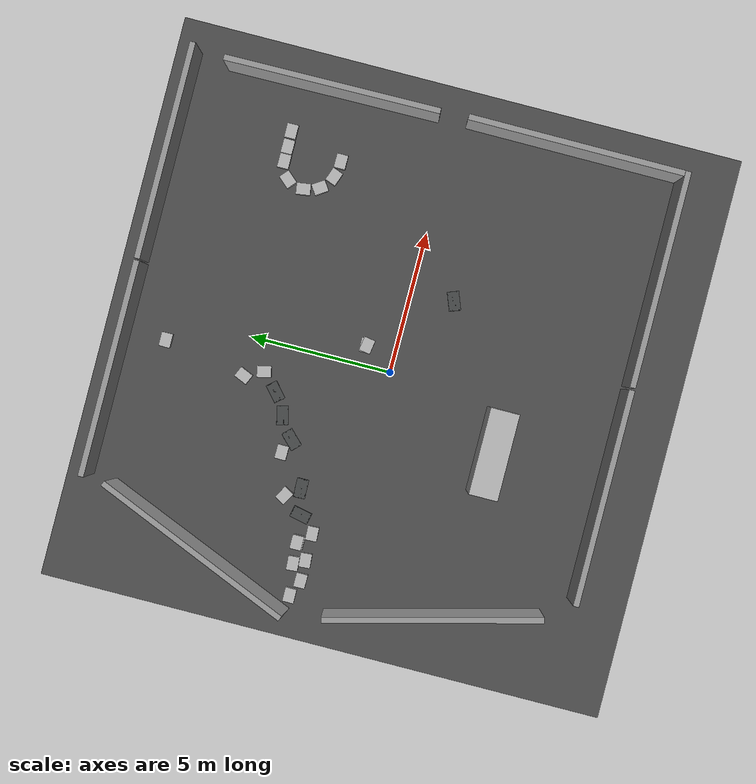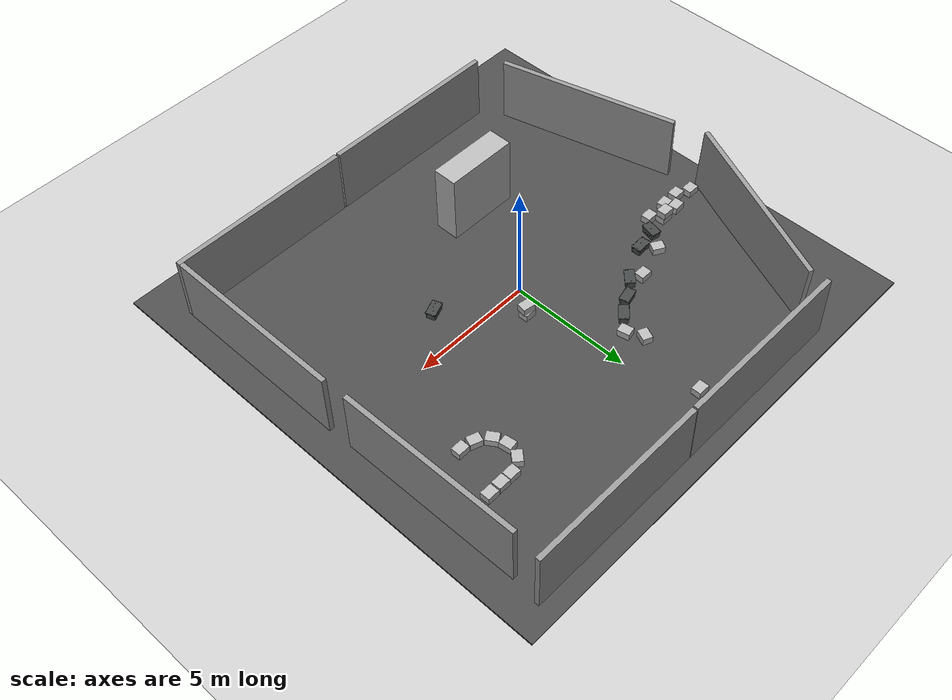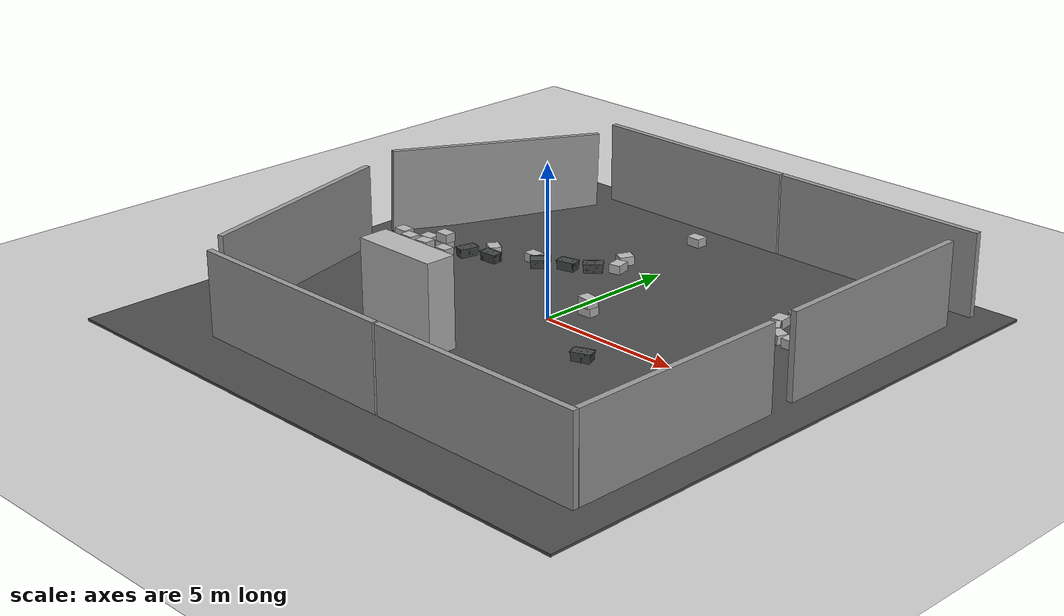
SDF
<sdf version="1.6">
 <world name="default">
  <light name="sun" type="directional">
   <pose>0 0 10 0 -0 0</pose>
   <diffuse>0.8 0.8 0.8 1</diffuse>
   <specular>0.2 0.2 0.2 1</specular>
   <attenuation>
    <range>1000</range>
    <constant>0.9</constant>
    <linear>0.01</linear>
    <quadratic>0.001</quadratic>
   </attenuation>
   <direction>-0.5 0.1 -0.9</direction>
  </light>
  <model name="ground_plane">
   <static>1</static>
   <link name="link">
    <collision name="collision">
     <geometry><plane><normal>0 0 1</normal><size>100 100</size></plane></geometry>
     <surface><friction><ode><mu>100</mu><mu2>50</mu2></ode></friction></surface>
    </collision>
    <visual name="visual">
     <cast_shadows>0</cast_shadows>
     <geometry><plane><normal>0 0 1</normal><size>100 100</size></plane></geometry>
     <material>
      <script><uri>file://media/materials/scripts/gazebo.material</uri><name>Gazebo/Grey</name></script>
     </material>
    </visual>
   </link>
  </model>
  <gravity>0 0 -9.8</gravity>
  <magnetic_field>6e-06 2.3e-05 -4.2e-05</magnetic_field>
  <atmosphere type="adiabatic"/>
  <physics name="default_physics" default="0" type="ode">
   <max_step_size>0.001</max_step_size>
   <real_time_factor>1</real_time_factor>
   <real_time_update_rate>1000</real_time_update_rate>
  </physics>
  <scene><ambient>0.4 0.4 0.4 1</ambient><background>0.7 0.7 0.7 1</background><shadows>1</shadows></scene>
  <audio><device>default</device></audio>
  <spherical_coordinates>
   <surface_model>EARTH_WGS84</surface_model>
   <latitude_deg>0</latitude_deg>
   <longitude_deg>0</longitude_deg>
   <elevation>0</elevation>
   <heading_deg>0</heading_deg>
  </spherical_coordinates>
  <model name="asphalt_plane">
   <static>1</static>
   <link name="link">
    <collision name="collision"><geometry><box><size>20 20 0.1</size></box></geometry></collision>
    <visual name="visual">
     <cast_shadows>0</cast_shadows>
     <geometry><box><size>20 20 0.1</size></box></geometry>
     <material>
      <script>
       <uri>model://asphalt_plane/materials/scripts</uri>
       <uri>model://asphalt_plane/materials/textures</uri>
       <name>vrc/asphalt</name>
      </script>
     </material>
    </visual>
   </link>
   <pose>0.192279 0.013144 0 0 -0 0</pose>
  </model>
  <model name="cardboard_box">
   <pose>0.72476 1.01066 0.497998 0 0 -0.15669</pose>
   <link name="link">
    <inertial>
     <mass>2</mass>
     <inertia>
      <ixx>0.0416667</ixx>
      <ixy>0</ixy>
      <ixz>0</ixz>
      <iyy>0.0566667</iyy>
      <iyz>0</iyz>
      <izz>0.0683333</izz>
     </inertia>
    </inertial>
    <collision name="collision">
     <geometry><box><size>0.5 0.4 0.3</size></box></geometry>
     <surface>
      <friction><ode><mu>1</mu><mu2>1</mu2></ode></friction>
      <contact><ode><kp>1e+07</kp><kd>1</kd><min_depth>0.001</min_depth><max_vel>0.1</max_vel></ode></contact>
     </surface>
    </collision>
    <visual name="visual">
     <pose>0 0 -0.15 0 -0 0</pose>
     <geometry>
      <mesh><uri>model://cardboard_box/meshes/cardboard_box.dae</uri><scale>1.25932 1.00745 0.755591</scale></mesh>
     </geometry>
    </visual>
   </link>
  </model>
  <model name="cardboard_box_0">
   <pose>0.71189 1.05322 0.198999 0 0 -2.5e-05</pose>
   <link name="link">
    <inertial>
     <mass>2</mass>
     <inertia>
      <ixx>0.0416667</ixx>
      <ixy>0</ixy>
      <ixz>0</ixz>
      <iyy>0.0566667</iyy>
      <iyz>0</iyz>
      <izz>0.0683333</izz>
     </inertia>
    </inertial>
    <collision name="collision">
     <geometry><box><size>0.5 0.4 0.3</size></box></geometry>
     <surface>
      <friction><ode><mu>1</mu><mu2>1</mu2></ode></friction>
      <contact><ode><kp>1e+07</kp><kd>1</kd><min_depth>0.001</min_depth><max_vel>0.1</max_vel></ode></contact>
     </surface>
    </collision>
    <visual name="visual">
     <pose>0 0 -0.15 0 -0 0</pose>
     <geometry>
      <mesh><uri>model://cardboard_box/meshes/cardboard_box.dae</uri><scale>1.25932 1.00745 0.755591</scale></mesh>
     </geometry>
    </visual>
   </link>
  </model>
  <model name="grey_wall">
   <static>1</static>
   <link name="link">
    <pose>0 0 1.4 0 -0 0</pose>
    <collision name="collision"><geometry><box><size>7.5 0.2 2.8</size></box></geometry></collision>
    <visual name="visual">
     <cast_shadows>0</cast_shadows>
     <geometry><box><size>7.5 0.2 2.8</size></box></geometry>
     <material>
      <script>
       <uri>model://grey_wall/materials/scripts</uri>
       <uri>model://grey_wall/materials/textures</uri>
       <name>vrc/grey_wall</name>
      </script>
     </material>
    </visual>
   </link>
   <pose>-7.44954 4.84736 -0.015063 -0.017176 0.041384 1.17726</pose>
  </model>
  <model name="brick_box_3x1x3">
   <static>1</static>
   <link name="chassis">
    <pose>0 0 1.5 0 -0 0</pose>
    <collision name="collision"><geometry><box><size>3 1 3</size></box></geometry></collision>
    <visual name="visual">
     <geometry><mesh><uri>model://brick_box_3x1x3/meshes/simple_box.dae</uri><scale>3 1 3</scale></mesh></geometry>
     <material>
      <script>
       <uri>model://brick_box_3x1x3/materials/scripts</uri>
       <uri>model://brick_box_3x1x3/materials/textures</uri>
       <name>BrickBox/Diffuse</name>
      </script>
     </material>
    </visual>
   </link>
   <pose>-1.76434 -4.05276 0 0 -0 0</pose>
  </model>
  <model name="grey_wall_0">
   <static>1</static>
   <link name="link">
    <pose>0 0 1.4 0 -0 0</pose>
    <collision name="collision"><geometry><box><size>7.5 0.2 2.8</size></box></geometry></collision>
    <visual name="visual">
     <cast_shadows>0</cast_shadows>
     <geometry><box><size>7.5 0.2 2.8</size></box></geometry>
     <material>
      <script>
       <uri>model://grey_wall/materials/scripts</uri>
       <uri>model://grey_wall/materials/textures</uri>
       <name>vrc/grey_wall</name>
      </script>
     </material>
    </visual>
   </link>
   <pose>-2.27113 -7.9947 0 0 -0 0</pose>
  </model>
  <model name="grey_wall_1">
   <static>1</static>
   <link name="link">
    <pose>0 0 1.4 0 -0 0</pose>
    <collision name="collision"><geometry><box><size>7.5 0.2 2.8</size></box></geometry></collision>
    <visual name="visual">
     <cast_shadows>0</cast_shadows>
     <geometry><box><size>7.5 0.2 2.8</size></box></geometry>
     <material>
      <script>
       <uri>model://grey_wall/materials/scripts</uri>
       <uri>model://grey_wall/materials/textures</uri>
       <name>vrc/grey_wall</name>
      </script>
     </material>
    </visual>
   </link>
   <pose>5.31338 -7.99467 -0 0 -0 0</pose>
  </model>
  <model name="grey_tote">
   <link name="link">
    <inertial>
     <pose>0 0 0.14155 0 -0 0</pose>
     <mass>3.53802</mass>
     <inertia>
      <ixx>0.0688358</ixx>
      <ixy>0</ixy>
      <ixz>0</ixz>
      <iyy>0.139596</iyy>
      <iyz>0</iyz>
      <izz>0.155909</izz>
     </inertia>
    </inertial>
    <collision name="lid">
     <pose>0 0 0.28958 0 -0 0</pose>
     <geometry><box><size>0.67768 0.41298 0.01588</size></box></geometry>
    </collision>
    <collision name="lid_lip_1">
     <pose>0 0.20063 0.3048 0 -0 0</pose>
     <geometry><box><size>0.65068 0.0105 0.0127</size></box></geometry>
    </collision>
    <collision name="lid_lip_2">
     <pose>0 -0.20063 0.3048 0 -0 0</pose>
     <geometry><box><size>0.65068 0.0105 0.0127</size></box></geometry>
    </collision>
    <collision name="lid_lip_3">
     <pose>0.32585 0 0.3048 0 -0 0</pose>
     <geometry><box><size>0.02602 0.31202 0.0127</size></box></geometry>
    </collision>
    <collision name="lid_lip_4">
     <pose>-0.32585 0 0.3048 0 -0 0</pose>
     <geometry><box><size>0.02602 0.31202 0.0127</size></box></geometry>
    </collision>
    <collision name="side_wall_1">
     <pose>0 -0.18 0.14155 0.061147 -0 0</pose>
     <geometry><box><size>0.58404 0.02602 0.283099</size></box></geometry>
    </collision>
    <collision name="side_wall_2">
     <pose>0 0.18 0.14155 -0.061147 0 0</pose>
     <geometry><box><size>0.58404 0.02602 0.283099</size></box></geometry>
    </collision>
    <collision name="side_wall_3">
     <pose>0.305 0 0.14155 0 0.061147 0</pose>
     <geometry><box><size>0.02602 0.33046 0.283099</size></box></geometry>
    </collision>
    <collision name="side_wall_4">
     <pose>-0.305 0 0.14155 0 -0.061147 0</pose>
     <geometry><box><size>0.02602 0.33046 0.283099</size></box></geometry>
    </collision>
    <collision name="bottom">
     <pose>0 0 0.01 0 -0 0</pose>
     <geometry><box><size>0.58404 0.33046 0.02</size></box></geometry>
    </collision>
    <collision name="corner_1">
     <pose>0.30202 -0.175 0.14155 0.061147 0.061147 -0</pose>
     <geometry><cylinder><radius>0.01268</radius><length>0.283099</length></cylinder></geometry>
    </collision>
    <collision name="corner_2">
     <pose>-0.30202 -0.175 0.14155 0.061147 -0.061147 0</pose>
     <geometry><cylinder><radius>0.01268</radius><length>0.283099</length></cylinder></geometry>
    </collision>
    <collision name="corner_3">
     <pose>-0.30202 0.175 0.14155 -0.061147 -0.061147 -0</pose>
     <geometry><cylinder><radius>0.01268</radius><length>0.283099</length></cylinder></geometry>
    </collision>
    <collision name="corner_4">
     <pose>0.30202 0.175 0.14155 -0.061147 0.061147 0</pose>
     <geometry><cylinder><radius>0.01268</radius><length>0.283099</length></cylinder></geometry>
    </collision>
    <visual name="visual"><geometry><mesh><uri>model://grey_tote/meshes/tote.dae</uri></mesh></geometry></visual>
   </link>
   <pose>2.96144 -1.51025 0.050558 0 -2.6e-05 0.362874</pose>
  </model>
  <model name="grey_wall_2">
   <static>1</static>
   <link name="link">
    <pose>0 0 1.4 0 -0 0</pose>
    <collision name="collision"><geometry><box><size>7.5 0.2 2.8</size></box></geometry></collision>
    <visual name="visual">
     <cast_shadows>0</cast_shadows>
     <geometry><box><size>7.5 0.2 2.8</size></box></geometry>
     <material>
      <script>
       <uri>model://grey_wall/materials/scripts</uri>
       <uri>model://grey_wall/materials/textures</uri>
       <name>vrc/grey_wall</name>
      </script>
     </material>
    </visual>
   </link>
   <pose>5.34881 9.1973 0 0 -0 0</pose>
  </model>
  <model name="grey_wall_3">
   <static>1</static>
   <link name="link">
    <pose>0 0 1.4 0 -0 0</pose>
    <collision name="collision"><geometry><box><size>7.5 0.2 2.8</size></box></geometry></collision>
    <visual name="visual">
     <cast_shadows>0</cast_shadows>
     <geometry><box><size>7.5 0.2 2.8</size></box></geometry>
     <material>
      <script>
       <uri>model://grey_wall/materials/scripts</uri>
       <uri>model://grey_wall/materials/textures</uri>
       <name>vrc/grey_wall</name>
      </script>
     </material>
    </visual>
   </link>
   <pose>-2.21517 9.18673 0 0 -0 0</pose>
  </model>
  <model name="grey_wall_4">
   <static>1</static>
   <link name="link">
    <pose>0 0 1.4 0 -0 0</pose>
    <collision name="collision"><geometry><box><size>7.5 0.2 2.8</size></box></geometry></collision>
    <visual name="visual">
     <cast_shadows>0</cast_shadows>
     <geometry><box><size>7.5 0.2 2.8</size></box></geometry>
     <material>
      <script>
       <uri>model://grey_wall/materials/scripts</uri>
       <uri>model://grey_wall/materials/textures</uri>
       <name>vrc/grey_wall</name>
      </script>
     </material>
    </visual>
   </link>
   <pose>-7.66936 -3.45876 0 0 0 -1.31887</pose>
  </model>
  <model name="grey_wall_5">
   <static>1</static>
   <link name="link">
    <pose>0 0 1.4 0 -0 0</pose>
    <collision name="collision"><geometry><box><size>7.5 0.2 2.8</size></box></geometry></collision>
    <visual name="visual">
     <cast_shadows>0</cast_shadows>
     <geometry><box><size>7.5 0.2 2.8</size></box></geometry>
     <material>
      <script>
       <uri>model://grey_wall/materials/scripts</uri>
       <uri>model://grey_wall/materials/textures</uri>
       <name>vrc/grey_wall</name>
      </script>
     </material>
    </visual>
   </link>
   <pose>8.98044 -4.13889 0 0 -0 1.56799</pose>
  </model>
  <model name="grey_wall_6">
   <static>1</static>
   <link name="link">
    <pose>0 0 1.4 0 -0 0</pose>
    <collision name="collision"><geometry><box><size>7.5 0.2 2.8</size></box></geometry></collision>
    <visual name="visual">
     <cast_shadows>0</cast_shadows>
     <geometry><box><size>7.5 0.2 2.8</size></box></geometry>
     <material>
      <script>
       <uri>model://grey_wall/materials/scripts</uri>
       <uri>model://grey_wall/materials/textures</uri>
       <name>vrc/grey_wall</name>
      </script>
     </material>
    </visual>
   </link>
   <pose>8.90398 4.3182 0 0 0 -1.56161</pose>
  </model>
  <model name="cardboard_box_1">
   <pose>-0.839211 7.82147 0.199 0 -0 0</pose>
   <link name="link">
    <inertial>
     <mass>2</mass>
     <inertia>
      <ixx>0.0416667</ixx>
      <ixy>0</ixy>
      <ixz>0</ixz>
      <iyy>0.0566667</iyy>
      <iyz>0</iyz>
      <izz>0.0683333</izz>
     </inertia>
    </inertial>
    <collision name="collision">
     <geometry><box><size>0.5 0.4 0.3</size></box></geometry>
     <surface>
      <friction><ode><mu>1</mu><mu2>1</mu2></ode></friction>
      <contact><ode><kp>1e+07</kp><kd>1</kd><min_depth>0.001</min_depth><max_vel>0.1</max_vel></ode></contact>
     </surface>
    </collision>
    <visual name="visual">
     <pose>0 0 -0.15 0 -0 0</pose>
     <geometry>
      <mesh><uri>model://cardboard_box/meshes/cardboard_box.dae</uri><scale>1.25932 1.00745 0.755591</scale></mesh>
     </geometry>
    </visual>
   </link>
  </model>
  <model name="cardboard_box_2">
   <pose>5.60423 5.11616 0.199 0 0 -2.29257</pose>
   <link name="link">
    <inertial>
     <mass>2</mass>
     <inertia>
      <ixx>0.0416667</ixx>
      <ixy>0</ixy>
      <ixz>0</ixz>
      <iyy>0.0566667</iyy>
      <iyz>0</iyz>
      <izz>0.0683333</izz>
     </inertia>
    </inertial>
    <collision name="collision">
     <geometry><box><size>0.5 0.4 0.3</size></box></geometry>
     <surface>
      <friction><ode><mu>1</mu><mu2>1</mu2></ode></friction>
      <contact><ode><kp>1e+07</kp><kd>1</kd><min_depth>0.001</min_depth><max_vel>0.1</max_vel></ode></contact>
     </surface>
    </collision>
    <visual name="visual">
     <pose>0 0 -0.15 0 -0 0</pose>
     <geometry>
      <mesh><uri>model://cardboard_box/meshes/cardboard_box.dae</uri><scale>1.25932 1.00745 0.755591</scale></mesh>
     </geometry>
    </visual>
   </link>
  </model>
  <model name="cardboard_box_3">
   <pose>6.19219 5.40232 0.199 0 -0 0</pose>
   <link name="link">
    <inertial>
     <mass>2</mass>
     <inertia>
      <ixx>0.0416667</ixx>
      <ixy>0</ixy>
      <ixz>0</ixz>
      <iyy>0.0566667</iyy>
      <iyz>0</iyz>
      <izz>0.0683333</izz>
     </inertia>
    </inertial>
    <collision name="collision">
     <geometry><box><size>0.5 0.4 0.3</size></box></geometry>
     <surface>
      <friction><ode><mu>1</mu><mu2>1</mu2></ode></friction>
      <contact><ode><kp>1e+07</kp><kd>1</kd><min_depth>0.001</min_depth><max_vel>0.1</max_vel></ode></contact>
     </surface>
    </collision>
    <visual name="visual">
     <pose>0 0 -0.15 0 -0 0</pose>
     <geometry>
      <mesh><uri>model://cardboard_box/meshes/cardboard_box.dae</uri><scale>1.25932 1.00745 0.755591</scale></mesh>
     </geometry>
    </visual>
   </link>
  </model>
  <model name="cardboard_box_4">
   <pose>5.42123 4.51829 0.199 0 0 -1.42901</pose>
   <link name="link">
    <inertial>
     <mass>2</mass>
     <inertia>
      <ixx>0.0416667</ixx>
      <ixy>0</ixy>
      <ixz>0</ixz>
      <iyy>0.0566667</iyy>
      <iyz>0</iyz>
      <izz>0.0683333</izz>
     </inertia>
    </inertial>
    <collision name="collision">
     <geometry><box><size>0.5 0.4 0.3</size></box></geometry>
     <surface>
      <friction><ode><mu>1</mu><mu2>1</mu2></ode></friction>
      <contact><ode><kp>1e+07</kp><kd>1</kd><min_depth>0.001</min_depth><max_vel>0.1</max_vel></ode></contact>
     </surface>
    </collision>
    <visual name="visual">
     <pose>0 0 -0.15 0 -0 0</pose>
     <geometry>
      <mesh><uri>model://cardboard_box/meshes/cardboard_box.dae</uri><scale>1.25932 1.00745 0.755591</scale></mesh>
     </geometry>
    </visual>
   </link>
  </model>
  <model name="cardboard_box_5">
   <pose>5.6055 3.97133 0.199 0 0 -0.988801</pose>
   <link name="link">
    <inertial>
     <mass>2</mass>
     <inertia>
      <ixx>0.0416667</ixx>
      <ixy>0</ixy>
      <ixz>0</ixz>
      <iyy>0.0566667</iyy>
      <iyz>0</iyz>
      <izz>0.0683333</izz>
     </inertia>
    </inertial>
    <collision name="collision">
     <geometry><box><size>0.5 0.4 0.3</size></box></geometry>
     <surface>
      <friction><ode><mu>1</mu><mu2>1</mu2></ode></friction>
      <contact><ode><kp>1e+07</kp><kd>1</kd><min_depth>0.001</min_depth><max_vel>0.1</max_vel></ode></contact>
     </surface>
    </collision>
    <visual name="visual">
     <pose>0 0 -0.15 0 -0 0</pose>
     <geometry>
      <mesh><uri>model://cardboard_box/meshes/cardboard_box.dae</uri><scale>1.25932 1.00745 0.755591</scale></mesh>
     </geometry>
    </visual>
   </link>
  </model>
  <model name="cardboard_box_6">
   <pose>6.10086 3.58974 0.199 0 0 -0.34898</pose>
   <link name="link">
    <inertial>
     <mass>2</mass>
     <inertia>
      <ixx>0.0416667</ixx>
      <ixy>0</ixy>
      <ixz>0</ixz>
      <iyy>0.0566667</iyy>
      <iyz>0</iyz>
      <izz>0.0683333</izz>
     </inertia>
    </inertial>
    <collision name="collision">
     <geometry><box><size>0.5 0.4 0.3</size></box></geometry>
     <surface>
      <friction><ode><mu>1</mu><mu2>1</mu2></ode></friction>
      <contact><ode><kp>1e+07</kp><kd>1</kd><min_depth>0.001</min_depth><max_vel>0.1</max_vel></ode></contact>
     </surface>
    </collision>
    <visual name="visual">
     <pose>0 0 -0.15 0 -0 0</pose>
     <geometry>
      <mesh><uri>model://cardboard_box/meshes/cardboard_box.dae</uri><scale>1.25932 1.00745 0.755591</scale></mesh>
     </geometry>
    </visual>
   </link>
  </model>
  <model name="cardboard_box_7">
   <pose>6.71402 5.4083 0.199 0 -0 0</pose>
   <link name="link">
    <inertial>
     <mass>2</mass>
     <inertia>
      <ixx>0.0416667</ixx>
      <ixy>0</ixy>
      <ixz>0</ixz>
      <iyy>0.0566667</iyy>
      <iyz>0</iyz>
      <izz>0.0683333</izz>
     </inertia>
    </inertial>
    <collision name="collision">
     <geometry><box><size>0.5 0.4 0.3</size></box></geometry>
     <surface>
      <friction><ode><mu>1</mu><mu2>1</mu2></ode></friction>
      <contact><ode><kp>1e+07</kp><kd>1</kd><min_depth>0.001</min_depth><max_vel>0.1</max_vel></ode></contact>
     </surface>
    </collision>
    <visual name="visual">
     <pose>0 0 -0.15 0 -0 0</pose>
     <geometry>
      <mesh><uri>model://cardboard_box/meshes/cardboard_box.dae</uri><scale>1.25932 1.00745 0.755591</scale></mesh>
     </geometry>
    </visual>
   </link>
  </model>
  <model name="cardboard_box_8">
   <pose>6.67179 3.49378 0.199 0 -0 0</pose>
   <link name="link">
    <inertial>
     <mass>2</mass>
     <inertia>
      <ixx>0.0416667</ixx>
      <ixy>0</ixy>
      <ixz>0</ixz>
      <iyy>0.0566667</iyy>
      <iyz>0</iyz>
      <izz>0.0683333</izz>
     </inertia>
    </inertial>
    <collision name="collision">
     <geometry><box><size>0.5 0.4 0.3</size></box></geometry>
     <surface>
      <friction><ode><mu>1</mu><mu2>1</mu2></ode></friction>
      <contact><ode><kp>1e+07</kp><kd>1</kd><min_depth>0.001</min_depth><max_vel>0.1</max_vel></ode></contact>
     </surface>
    </collision>
    <visual name="visual">
     <pose>0 0 -0.15 0 -0 0</pose>
     <geometry>
      <mesh><uri>model://cardboard_box/meshes/cardboard_box.dae</uri><scale>1.25932 1.00745 0.755591</scale></mesh>
     </geometry>
    </visual>
   </link>
  </model>
  <model name="cardboard_box_9">
   <pose>7.25985 5.42085 0.199 0 -0 0</pose>
   <link name="link">
    <inertial>
     <mass>2</mass>
     <inertia>
      <ixx>0.0416667</ixx>
      <ixy>0</ixy>
      <ixz>0</ixz>
      <iyy>0.0566667</iyy>
      <iyz>0</iyz>
      <izz>0.0683333</izz>
     </inertia>
    </inertial>
    <collision name="collision">
     <geometry><box><size>0.5 0.4 0.3</size></box></geometry>
     <surface>
      <friction><ode><mu>1</mu><mu2>1</mu2></ode></friction>
      <contact><ode><kp>1e+07</kp><kd>1</kd><min_depth>0.001</min_depth><max_vel>0.1</max_vel></ode></contact>
     </surface>
    </collision>
    <visual name="visual">
     <pose>0 0 -0.15 0 -0 0</pose>
     <geometry>
      <mesh><uri>model://cardboard_box/meshes/cardboard_box.dae</uri><scale>1.25932 1.00745 0.755591</scale></mesh>
     </geometry>
    </visual>
   </link>
  </model>
  <model name="grey_tote_0">
   <link name="link">
    <inertial>
     <pose>0 0 0.14155 0 -0 0</pose>
     <mass>3.53802</mass>
     <inertia>
      <ixx>0.0688358</ixx>
      <ixy>0</ixy>
      <ixz>0</ixz>
      <iyy>0.139596</iyy>
      <iyz>0</iyz>
      <izz>0.155909</izz>
     </inertia>
    </inertial>
    <collision name="lid">
     <pose>0 0 0.28958 0 -0 0</pose>
     <geometry><box><size>0.67768 0.41298 0.01588</size></box></geometry>
    </collision>
    <collision name="lid_lip_1">
     <pose>0 0.20063 0.3048 0 -0 0</pose>
     <geometry><box><size>0.65068 0.0105 0.0127</size></box></geometry>
    </collision>
    <collision name="lid_lip_2">
     <pose>0 -0.20063 0.3048 0 -0 0</pose>
     <geometry><box><size>0.65068 0.0105 0.0127</size></box></geometry>
    </collision>
    <collision name="lid_lip_3">
     <pose>0.32585 0 0.3048 0 -0 0</pose>
     <geometry><box><size>0.02602 0.31202 0.0127</size></box></geometry>
    </collision>
    <collision name="lid_lip_4">
     <pose>-0.32585 0 0.3048 0 -0 0</pose>
     <geometry><box><size>0.02602 0.31202 0.0127</size></box></geometry>
    </collision>
    <collision name="side_wall_1">
     <pose>0 -0.18 0.14155 0.061147 -0 0</pose>
     <geometry><box><size>0.58404 0.02602 0.283099</size></box></geometry>
    </collision>
    <collision name="side_wall_2">
     <pose>0 0.18 0.14155 -0.061147 0 0</pose>
     <geometry><box><size>0.58404 0.02602 0.283099</size></box></geometry>
    </collision>
    <collision name="side_wall_3">
     <pose>0.305 0 0.14155 0 0.061147 0</pose>
     <geometry><box><size>0.02602 0.33046 0.283099</size></box></geometry>
    </collision>
    <collision name="side_wall_4">
     <pose>-0.305 0 0.14155 0 -0.061147 0</pose>
     <geometry><box><size>0.02602 0.33046 0.283099</size></box></geometry>
    </collision>
    <collision name="bottom">
     <pose>0 0 0.01 0 -0 0</pose>
     <geometry><box><size>0.58404 0.33046 0.02</size></box></geometry>
    </collision>
    <collision name="corner_1">
     <pose>0.30202 -0.175 0.14155 0.061147 0.061147 -0</pose>
     <geometry><cylinder><radius>0.01268</radius><length>0.283099</length></cylinder></geometry>
    </collision>
    <collision name="corner_2">
     <pose>-0.30202 -0.175 0.14155 0.061147 -0.061147 0</pose>
     <geometry><cylinder><radius>0.01268</radius><length>0.283099</length></cylinder></geometry>
    </collision>
    <collision name="corner_3">
     <pose>-0.30202 0.175 0.14155 -0.061147 -0.061147 -0</pose>
     <geometry><cylinder><radius>0.01268</radius><length>0.283099</length></cylinder></geometry>
    </collision>
    <collision name="corner_4">
     <pose>0.30202 0.175 0.14155 -0.061147 0.061147 0</pose>
     <geometry><cylinder><radius>0.01268</radius><length>0.283099</length></cylinder></geometry>
    </collision>
    <visual name="visual"><geometry><mesh><uri>model://grey_tote/meshes/tote.dae</uri></mesh></geometry></visual>
   </link>
   <pose>-4.64785 1.99091 0.050566 0 -0 0.026403</pose>
  </model>
  <model name="grey_tote_1">
   <link name="link">
    <inertial>
     <pose>0 0 0.14155 0 -0 0</pose>
     <mass>3.53802</mass>
     <inertia>
      <ixx>0.0688358</ixx>
      <ixy>0</ixy>
      <ixz>0</ixz>
      <iyy>0.139596</iyy>
      <iyz>0</iyz>
      <izz>0.155909</izz>
     </inertia>
    </inertial>
    <collision name="lid">
     <pose>0 0 0.28958 0 -0 0</pose>
     <geometry><box><size>0.67768 0.41298 0.01588</size></box></geometry>
    </collision>
    <collision name="lid_lip_1">
     <pose>0 0.20063 0.3048 0 -0 0</pose>
     <geometry><box><size>0.65068 0.0105 0.0127</size></box></geometry>
    </collision>
    <collision name="lid_lip_2">
     <pose>0 -0.20063 0.3048 0 -0 0</pose>
     <geometry><box><size>0.65068 0.0105 0.0127</size></box></geometry>
    </collision>
    <collision name="lid_lip_3">
     <pose>0.32585 0 0.3048 0 -0 0</pose>
     <geometry><box><size>0.02602 0.31202 0.0127</size></box></geometry>
    </collision>
    <collision name="lid_lip_4">
     <pose>-0.32585 0 0.3048 0 -0 0</pose>
     <geometry><box><size>0.02602 0.31202 0.0127</size></box></geometry>
    </collision>
    <collision name="side_wall_1">
     <pose>0 -0.18 0.14155 0.061147 -0 0</pose>
     <geometry><box><size>0.58404 0.02602 0.283099</size></box></geometry>
    </collision>
    <collision name="side_wall_2">
     <pose>0 0.18 0.14155 -0.061147 0 0</pose>
     <geometry><box><size>0.58404 0.02602 0.283099</size></box></geometry>
    </collision>
    <collision name="side_wall_3">
     <pose>0.305 0 0.14155 0 0.061147 0</pose>
     <geometry><box><size>0.02602 0.33046 0.283099</size></box></geometry>
    </collision>
    <collision name="side_wall_4">
     <pose>-0.305 0 0.14155 0 -0.061147 0</pose>
     <geometry><box><size>0.02602 0.33046 0.283099</size></box></geometry>
    </collision>
    <collision name="bottom">
     <pose>0 0 0.01 0 -0 0</pose>
     <geometry><box><size>0.58404 0.33046 0.02</size></box></geometry>
    </collision>
    <collision name="corner_1">
     <pose>0.30202 -0.175 0.14155 0.061147 0.061147 -0</pose>
     <geometry><cylinder><radius>0.01268</radius><length>0.283099</length></cylinder></geometry>
    </collision>
    <collision name="corner_2">
     <pose>-0.30202 -0.175 0.14155 0.061147 -0.061147 0</pose>
     <geometry><cylinder><radius>0.01268</radius><length>0.283099</length></cylinder></geometry>
    </collision>
    <collision name="corner_3">
     <pose>-0.30202 0.175 0.14155 -0.061147 -0.061147 -0</pose>
     <geometry><cylinder><radius>0.01268</radius><length>0.283099</length></cylinder></geometry>
    </collision>
    <collision name="corner_4">
     <pose>0.30202 0.175 0.14155 -0.061147 0.061147 0</pose>
     <geometry><cylinder><radius>0.01268</radius><length>0.283099</length></cylinder></geometry>
    </collision>
    <visual name="visual"><geometry><mesh><uri>model://grey_tote/meshes/tote.dae</uri></mesh></geometry></visual>
   </link>
   <pose>-5.54203 1.76673 0.050561 0 -1.6e-05 1.36039</pose>
  </model>
  <model name="grey_tote_2">
   <link name="link">
    <inertial>
     <pose>0 0 0.14155 0 -0 0</pose>
     <mass>3.53802</mass>
     <inertia>
      <ixx>0.0688358</ixx>
      <ixy>0</ixy>
      <ixz>0</ixz>
      <iyy>0.139596</iyy>
      <iyz>0</iyz>
      <izz>0.155909</izz>
     </inertia>
    </inertial>
    <collision name="lid">
     <pose>0 0 0.28958 0 -0 0</pose>
     <geometry><box><size>0.67768 0.41298 0.01588</size></box></geometry>
    </collision>
    <collision name="lid_lip_1">
     <pose>0 0.20063 0.3048 0 -0 0</pose>
     <geometry><box><size>0.65068 0.0105 0.0127</size></box></geometry>
    </collision>
    <collision name="lid_lip_2">
     <pose>0 -0.20063 0.3048 0 -0 0</pose>
     <geometry><box><size>0.65068 0.0105 0.0127</size></box></geometry>
    </collision>
    <collision name="lid_lip_3">
     <pose>0.32585 0 0.3048 0 -0 0</pose>
     <geometry><box><size>0.02602 0.31202 0.0127</size></box></geometry>
    </collision>
    <collision name="lid_lip_4">
     <pose>-0.32585 0 0.3048 0 -0 0</pose>
     <geometry><box><size>0.02602 0.31202 0.0127</size></box></geometry>
    </collision>
    <collision name="side_wall_1">
     <pose>0 -0.18 0.14155 0.061147 -0 0</pose>
     <geometry><box><size>0.58404 0.02602 0.283099</size></box></geometry>
    </collision>
    <collision name="side_wall_2">
     <pose>0 0.18 0.14155 -0.061147 0 0</pose>
     <geometry><box><size>0.58404 0.02602 0.283099</size></box></geometry>
    </collision>
    <collision name="side_wall_3">
     <pose>0.305 0 0.14155 0 0.061147 0</pose>
     <geometry><box><size>0.02602 0.33046 0.283099</size></box></geometry>
    </collision>
    <collision name="side_wall_4">
     <pose>-0.305 0 0.14155 0 -0.061147 0</pose>
     <geometry><box><size>0.02602 0.33046 0.283099</size></box></geometry>
    </collision>
    <collision name="bottom">
     <pose>0 0 0.01 0 -0 0</pose>
     <geometry><box><size>0.58404 0.33046 0.02</size></box></geometry>
    </collision>
    <collision name="corner_1">
     <pose>0.30202 -0.175 0.14155 0.061147 0.061147 -0</pose>
     <geometry><cylinder><radius>0.01268</radius><length>0.283099</length></cylinder></geometry>
    </collision>
    <collision name="corner_2">
     <pose>-0.30202 -0.175 0.14155 0.061147 -0.061147 0</pose>
     <geometry><cylinder><radius>0.01268</radius><length>0.283099</length></cylinder></geometry>
    </collision>
    <collision name="corner_3">
     <pose>-0.30202 0.175 0.14155 -0.061147 -0.061147 -0</pose>
     <geometry><cylinder><radius>0.01268</radius><length>0.283099</length></cylinder></geometry>
    </collision>
    <collision name="corner_4">
     <pose>0.30202 0.175 0.14155 -0.061147 0.061147 0</pose>
     <geometry><cylinder><radius>0.01268</radius><length>0.283099</length></cylinder></geometry>
    </collision>
    <visual name="visual"><geometry><mesh><uri>model://grey_tote/meshes/tote.dae</uri></mesh></geometry></visual>
   </link>
   <pose>-3.10544 2.74305 0.060894 0.056273 -9e-06 0.782819</pose>
  </model>
  <model name="grey_tote_3">
   <link name="link">
    <inertial>
     <pose>0 0 0.14155 0 -0 0</pose>
     <mass>3.53802</mass>
     <inertia>
      <ixx>0.0688358</ixx>
      <ixy>0</ixy>
      <ixz>0</ixz>
      <iyy>0.139596</iyy>
      <iyz>0</iyz>
      <izz>0.155909</izz>
     </inertia>
    </inertial>
    <collision name="lid">
     <pose>0 0 0.28958 0 -0 0</pose>
     <geometry><box><size>0.67768 0.41298 0.01588</size></box></geometry>
    </collision>
    <collision name="lid_lip_1">
     <pose>0 0.20063 0.3048 0 -0 0</pose>
     <geometry><box><size>0.65068 0.0105 0.0127</size></box></geometry>
    </collision>
    <collision name="lid_lip_2">
     <pose>0 -0.20063 0.3048 0 -0 0</pose>
     <geometry><box><size>0.65068 0.0105 0.0127</size></box></geometry>
    </collision>
    <collision name="lid_lip_3">
     <pose>0.32585 0 0.3048 0 -0 0</pose>
     <geometry><box><size>0.02602 0.31202 0.0127</size></box></geometry>
    </collision>
    <collision name="lid_lip_4">
     <pose>-0.32585 0 0.3048 0 -0 0</pose>
     <geometry><box><size>0.02602 0.31202 0.0127</size></box></geometry>
    </collision>
    <collision name="side_wall_1">
     <pose>0 -0.18 0.14155 0.061147 -0 0</pose>
     <geometry><box><size>0.58404 0.02602 0.283099</size></box></geometry>
    </collision>
    <collision name="side_wall_2">
     <pose>0 0.18 0.14155 -0.061147 0 0</pose>
     <geometry><box><size>0.58404 0.02602 0.283099</size></box></geometry>
    </collision>
    <collision name="side_wall_3">
     <pose>0.305 0 0.14155 0 0.061147 0</pose>
     <geometry><box><size>0.02602 0.33046 0.283099</size></box></geometry>
    </collision>
    <collision name="side_wall_4">
     <pose>-0.305 0 0.14155 0 -0.061147 0</pose>
     <geometry><box><size>0.02602 0.33046 0.283099</size></box></geometry>
    </collision>
    <collision name="bottom">
     <pose>0 0 0.01 0 -0 0</pose>
     <geometry><box><size>0.58404 0.33046 0.02</size></box></geometry>
    </collision>
    <collision name="corner_1">
     <pose>0.30202 -0.175 0.14155 0.061147 0.061147 -0</pose>
     <geometry><cylinder><radius>0.01268</radius><length>0.283099</length></cylinder></geometry>
    </collision>
    <collision name="corner_2">
     <pose>-0.30202 -0.175 0.14155 0.061147 -0.061147 0</pose>
     <geometry><cylinder><radius>0.01268</radius><length>0.283099</length></cylinder></geometry>
    </collision>
    <collision name="corner_3">
     <pose>-0.30202 0.175 0.14155 -0.061147 -0.061147 -0</pose>
     <geometry><cylinder><radius>0.01268</radius><length>0.283099</length></cylinder></geometry>
    </collision>
    <collision name="corner_4">
     <pose>0.30202 0.175 0.14155 -0.061147 0.061147 0</pose>
     <geometry><cylinder><radius>0.01268</radius><length>0.283099</length></cylinder></geometry>
    </collision>
    <visual name="visual"><geometry><mesh><uri>model://grey_tote/meshes/tote.dae</uri></mesh></geometry></visual>
   </link>
   <pose>-2.35716 3.24666 0.050561 0 1.7e-05 0.240885</pose>
  </model>
  <model name="grey_tote_4">
   <link name="link">
    <inertial>
     <pose>0 0 0.14155 0 -0 0</pose>
     <mass>3.53802</mass>
     <inertia>
      <ixx>0.0688358</ixx>
      <ixy>0</ixy>
      <ixz>0</ixz>
      <iyy>0.139596</iyy>
      <iyz>0</iyz>
      <izz>0.155909</izz>
     </inertia>
    </inertial>
    <collision name="lid">
     <pose>0 0 0.28958 0 -0 0</pose>
     <geometry><box><size>0.67768 0.41298 0.01588</size></box></geometry>
    </collision>
    <collision name="lid_lip_1">
     <pose>0 0.20063 0.3048 0 -0 0</pose>
     <geometry><box><size>0.65068 0.0105 0.0127</size></box></geometry>
    </collision>
    <collision name="lid_lip_2">
     <pose>0 -0.20063 0.3048 0 -0 0</pose>
     <geometry><box><size>0.65068 0.0105 0.0127</size></box></geometry>
    </collision>
    <collision name="lid_lip_3">
     <pose>0.32585 0 0.3048 0 -0 0</pose>
     <geometry><box><size>0.02602 0.31202 0.0127</size></box></geometry>
    </collision>
    <collision name="lid_lip_4">
     <pose>-0.32585 0 0.3048 0 -0 0</pose>
     <geometry><box><size>0.02602 0.31202 0.0127</size></box></geometry>
    </collision>
    <collision name="side_wall_1">
     <pose>0 -0.18 0.14155 0.061147 -0 0</pose>
     <geometry><box><size>0.58404 0.02602 0.283099</size></box></geometry>
    </collision>
    <collision name="side_wall_2">
     <pose>0 0.18 0.14155 -0.061147 0 0</pose>
     <geometry><box><size>0.58404 0.02602 0.283099</size></box></geometry>
    </collision>
    <collision name="side_wall_3">
     <pose>0.305 0 0.14155 0 0.061147 0</pose>
     <geometry><box><size>0.02602 0.33046 0.283099</size></box></geometry>
    </collision>
    <collision name="side_wall_4">
     <pose>-0.305 0 0.14155 0 -0.061147 0</pose>
     <geometry><box><size>0.02602 0.33046 0.283099</size></box></geometry>
    </collision>
    <collision name="bottom">
     <pose>0 0 0.01 0 -0 0</pose>
     <geometry><box><size>0.58404 0.33046 0.02</size></box></geometry>
    </collision>
    <collision name="corner_1">
     <pose>0.30202 -0.175 0.14155 0.061147 0.061147 -0</pose>
     <geometry><cylinder><radius>0.01268</radius><length>0.283099</length></cylinder></geometry>
    </collision>
    <collision name="corner_2">
     <pose>-0.30202 -0.175 0.14155 0.061147 -0.061147 0</pose>
     <geometry><cylinder><radius>0.01268</radius><length>0.283099</length></cylinder></geometry>
    </collision>
    <collision name="corner_3">
     <pose>-0.30202 0.175 0.14155 -0.061147 -0.061147 -0</pose>
     <geometry><cylinder><radius>0.01268</radius><length>0.283099</length></cylinder></geometry>
    </collision>
    <collision name="corner_4">
     <pose>0.30202 0.175 0.14155 -0.061147 0.061147 0</pose>
     <geometry><cylinder><radius>0.01268</radius><length>0.283099</length></cylinder></geometry>
    </collision>
    <visual name="visual"><geometry><mesh><uri>model://grey_tote/meshes/tote.dae</uri></mesh></geometry></visual>
   </link>
   <pose>-1.63347 3.68386 0.050561 -0 -1.7e-05 0.708296</pose>
  </model>
  <model name="cardboard_box_10">
   <pose>-1.05485 4.24952 0.199 0 0 -1.36692</pose>
   <link name="link">
    <inertial>
     <mass>2</mass>
     <inertia>
      <ixx>0.0416667</ixx>
      <ixy>0</ixy>
      <ixz>0</ixz>
      <iyy>0.0566667</iyy>
      <iyz>0</iyz>
      <izz>0.0683333</izz>
     </inertia>
    </inertial>
    <collision name="collision">
     <geometry><box><size>0.5 0.4 0.3</size></box></geometry>
     <surface>
      <friction><ode><mu>1</mu><mu2>1</mu2></ode></friction>
      <contact><ode><kp>1e+07</kp><kd>1</kd><min_depth>0.001</min_depth><max_vel>0.1</max_vel></ode></contact>
     </surface>
    </collision>
    <visual name="visual">
     <pose>0 0 -0.15 0 -0 0</pose>
     <geometry>
      <mesh><uri>model://cardboard_box/meshes/cardboard_box.dae</uri><scale>1.25932 1.00745 0.755591</scale></mesh>
     </geometry>
    </visual>
   </link>
  </model>
  <model name="cardboard_box_11">
   <pose>-1.36443 4.9012 0.199 0 -0 1.15981</pose>
   <link name="link">
    <inertial>
     <mass>2</mass>
     <inertia>
      <ixx>0.0416667</ixx>
      <ixy>0</ixy>
      <ixz>0</ixz>
      <iyy>0.0566667</iyy>
      <iyz>0</iyz>
      <izz>0.0683333</izz>
     </inertia>
    </inertial>
    <collision name="collision">
     <geometry><box><size>0.5 0.4 0.3</size></box></geometry>
     <surface>
      <friction><ode><mu>1</mu><mu2>1</mu2></ode></friction>
      <contact><ode><kp>1e+07</kp><kd>1</kd><min_depth>0.001</min_depth><max_vel>0.1</max_vel></ode></contact>
     </surface>
    </collision>
    <visual name="visual">
     <pose>0 0 -0.15 0 -0 0</pose>
     <geometry>
      <mesh><uri>model://cardboard_box/meshes/cardboard_box.dae</uri><scale>1.25932 1.00745 0.755591</scale></mesh>
     </geometry>
    </visual>
   </link>
  </model>
  <model name="cardboard_box_12">
   <pose>-8.34035 1.44997 0.199 0 -0 0</pose>
   <link name="link">
    <inertial>
     <mass>2</mass>
     <inertia>
      <ixx>0.0416667</ixx>
      <ixy>0</ixy>
      <ixz>0</ixz>
      <iyy>0.0566667</iyy>
      <iyz>0</iyz>
      <izz>0.0683333</izz>
     </inertia>
    </inertial>
    <collision name="collision">
     <geometry><box><size>0.5 0.4 0.3</size></box></geometry>
     <surface>
      <friction><ode><mu>1</mu><mu2>1</mu2></ode></friction>
      <contact><ode><kp>1e+07</kp><kd>1</kd><min_depth>0.001</min_depth><max_vel>0.1</max_vel></ode></contact>
     </surface>
    </collision>
    <visual name="visual">
     <pose>0 0 -0.15 0 -0 0</pose>
     <geometry>
      <mesh><uri>model://cardboard_box/meshes/cardboard_box.dae</uri><scale>1.25932 1.00745 0.755591</scale></mesh>
     </geometry>
    </visual>
   </link>
  </model>
  <model name="cardboard_box_13">
   <pose>-7.7538 1.20479 0.199 0 -0 0</pose>
   <link name="link">
    <inertial>
     <mass>2</mass>
     <inertia>
      <ixx>0.0416667</ixx>
      <ixy>0</ixy>
      <ixz>0</ixz>
      <iyy>0.0566667</iyy>
      <iyz>0</iyz>
      <izz>0.0683333</izz>
     </inertia>
    </inertial>
    <collision name="collision">
     <geometry><box><size>0.5 0.4 0.3</size></box></geometry>
     <surface>
      <friction><ode><mu>1</mu><mu2>1</mu2></ode></friction>
      <contact><ode><kp>1e+07</kp><kd>1</kd><min_depth>0.001</min_depth><max_vel>0.1</max_vel></ode></contact>
     </surface>
    </collision>
    <visual name="visual">
     <pose>0 0 -0.15 0 -0 0</pose>
     <geometry>
      <mesh><uri>model://cardboard_box/meshes/cardboard_box.dae</uri><scale>1.25932 1.00745 0.755591</scale></mesh>
     </geometry>
    </visual>
   </link>
  </model>
  <model name="cardboard_box_14">
   <pose>-7.0326 1.21967 0.199 0 -0 0.072837</pose>
   <link name="link">
    <inertial>
     <mass>2</mass>
     <inertia>
      <ixx>0.0416667</ixx>
      <ixy>0</ixy>
      <ixz>0</ixz>
      <iyy>0.0566667</iyy>
      <iyz>0</iyz>
      <izz>0.0683333</izz>
     </inertia>
    </inertial>
    <collision name="collision">
     <geometry><box><size>0.5 0.4 0.3</size></box></geometry>
     <surface>
      <friction><ode><mu>1</mu><mu2>1</mu2></ode></friction>
      <contact><ode><kp>1e+07</kp><kd>1</kd><min_depth>0.001</min_depth><max_vel>0.1</max_vel></ode></contact>
     </surface>
    </collision>
    <visual name="visual">
     <pose>0 0 -0.15 0 -0 0</pose>
     <geometry>
      <mesh><uri>model://cardboard_box/meshes/cardboard_box.dae</uri><scale>1.25932 1.00745 0.755591</scale></mesh>
     </geometry>
    </visual>
   </link>
  </model>
  <model name="cardboard_box_15">
   <pose>-6.47875 1.65654 0.497998 -1e-06 0 -0.000248</pose>
   <link name="link">
    <inertial>
     <mass>2</mass>
     <inertia>
      <ixx>0.0416667</ixx>
      <ixy>0</ixy>
      <ixz>0</ixz>
      <iyy>0.0566667</iyy>
      <iyz>0</iyz>
      <izz>0.0683333</izz>
     </inertia>
    </inertial>
    <collision name="collision">
     <geometry><box><size>0.5 0.4 0.3</size></box></geometry>
     <surface>
      <friction><ode><mu>1</mu><mu2>1</mu2></ode></friction>
      <contact><ode><kp>1e+07</kp><kd>1</kd><min_depth>0.001</min_depth><max_vel>0.1</max_vel></ode></contact>
     </surface>
    </collision>
    <visual name="visual">
     <pose>0 0 -0.15 0 -0 0</pose>
     <geometry>
      <mesh><uri>model://cardboard_box/meshes/cardboard_box.dae</uri><scale>1.25932 1.00745 0.755591</scale></mesh>
     </geometry>
    </visual>
   </link>
  </model>
  <model name="cardboard_box_16">
   <pose>-6.07779 1.22305 0.199 0 -0 0.037468</pose>
   <link name="link">
    <inertial>
     <mass>2</mass>
     <inertia>
      <ixx>0.0416667</ixx>
      <ixy>0</ixy>
      <ixz>0</ixz>
      <iyy>0.0566667</iyy>
      <iyz>0</iyz>
      <izz>0.0683333</izz>
     </inertia>
    </inertial>
    <collision name="collision">
     <geometry><box><size>0.5 0.4 0.3</size></box></geometry>
     <surface>
      <friction><ode><mu>1</mu><mu2>1</mu2></ode></friction>
      <contact><ode><kp>1e+07</kp><kd>1</kd><min_depth>0.001</min_depth><max_vel>0.1</max_vel></ode></contact>
     </surface>
    </collision>
    <visual name="visual">
     <pose>0 0 -0.15 0 -0 0</pose>
     <geometry>
      <mesh><uri>model://cardboard_box/meshes/cardboard_box.dae</uri><scale>1.25932 1.00745 0.755591</scale></mesh>
     </geometry>
    </visual>
   </link>
  </model>
  <model name="cardboard_box_17">
   <pose>-6.48756 1.62124 0.198999 0 0 -8.2e-05</pose>
   <link name="link">
    <inertial>
     <mass>2</mass>
     <inertia>
      <ixx>0.0416667</ixx>
      <ixy>0</ixy>
      <ixz>0</ixz>
      <iyy>0.0566667</iyy>
      <iyz>0</iyz>
      <izz>0.0683333</izz>
     </inertia>
    </inertial>
    <collision name="collision">
     <geometry><box><size>0.5 0.4 0.3</size></box></geometry>
     <surface>
      <friction><ode><mu>1</mu><mu2>1</mu2></ode></friction>
      <contact><ode><kp>1e+07</kp><kd>1</kd><min_depth>0.001</min_depth><max_vel>0.1</max_vel></ode></contact>
     </surface>
    </collision>
    <visual name="visual">
     <pose>0 0 -0.15 0 -0 0</pose>
     <geometry>
      <mesh><uri>model://cardboard_box/meshes/cardboard_box.dae</uri><scale>1.25932 1.00745 0.755591</scale></mesh>
     </geometry>
    </visual>
   </link>
  </model>
  <model name="cardboard_box_18">
   <pose>-7.24047 1.61472 0.199 0 -0 0.071787</pose>
   <link name="link">
    <inertial>
     <mass>2</mass>
     <inertia>
      <ixx>0.0416667</ixx>
      <ixy>0</ixy>
      <ixz>0</ixz>
      <iyy>0.0566667</iyy>
      <iyz>0</iyz>
      <izz>0.0683333</izz>
     </inertia>
    </inertial>
    <collision name="collision">
     <geometry><box><size>0.5 0.4 0.3</size></box></geometry>
     <surface>
      <friction><ode><mu>1</mu><mu2>1</mu2></ode></friction>
      <contact><ode><kp>1e+07</kp><kd>1</kd><min_depth>0.001</min_depth><max_vel>0.1</max_vel></ode></contact>
     </surface>
    </collision>
    <visual name="visual">
     <pose>0 0 -0.15 0 -0 0</pose>
     <geometry>
      <mesh><uri>model://cardboard_box/meshes/cardboard_box.dae</uri><scale>1.25932 1.00745 0.755591</scale></mesh>
     </geometry>
    </visual>
   </link>
  </model>
  <model name="cardboard_box_19">
   <pose>-3.6072 2.95445 0.199499 3e-06 -0.002002 -0.0125</pose>
   <link name="link">
    <inertial>
     <mass>2</mass>
     <inertia>
      <ixx>0.0416667</ixx>
      <ixy>0</ixy>
      <ixz>0</ixz>
      <iyy>0.0566667</iyy>
      <iyz>0</iyz>
      <izz>0.0683333</izz>
     </inertia>
    </inertial>
    <collision name="collision">
     <geometry><box><size>0.5 0.4 0.3</size></box></geometry>
     <surface>
      <friction><ode><mu>1</mu><mu2>1</mu2></ode></friction>
      <contact><ode><kp>1e+07</kp><kd>1</kd><min_depth>0.001</min_depth><max_vel>0.1</max_vel></ode></contact>
     </surface>
    </collision>
    <visual name="visual">
     <pose>0 0 -0.15 0 -0 0</pose>
     <geometry>
      <mesh><uri>model://cardboard_box/meshes/cardboard_box.dae</uri><scale>1.25932 1.00745 0.755591</scale></mesh>
     </geometry>
    </visual>
   </link>
  </model>
  <model name="cardboard_box_20">
   <pose>-5.03445 2.48804 0.199868 -0.001908 -0.001953 -0.522185</pose>
   <link name="link">
    <inertial>
     <mass>2</mass>
     <inertia>
      <ixx>0.0416667</ixx>
      <ixy>0</ixy>
      <ixz>0</ixz>
      <iyy>0.0566667</iyy>
      <iyz>0</iyz>
      <izz>0.0683333</izz>
     </inertia>
    </inertial>
    <collision name="collision">
     <geometry><box><size>0.5 0.4 0.3</size></box></geometry>
     <surface>
      <friction><ode><mu>1</mu><mu2>1</mu2></ode></friction>
      <contact><ode><kp>1e+07</kp><kd>1</kd><min_depth>0.001</min_depth><max_vel>0.1</max_vel></ode></contact>
     </surface>
    </collision>
    <visual name="visual">
     <pose>0 0 -0.15 0 -0 0</pose>
     <geometry>
      <mesh><uri>model://cardboard_box/meshes/cardboard_box.dae</uri><scale>1.25932 1.00745 0.755591</scale></mesh>
     </geometry>
    </visual>
   </link>
  </model>
 </world>
</sdf>
